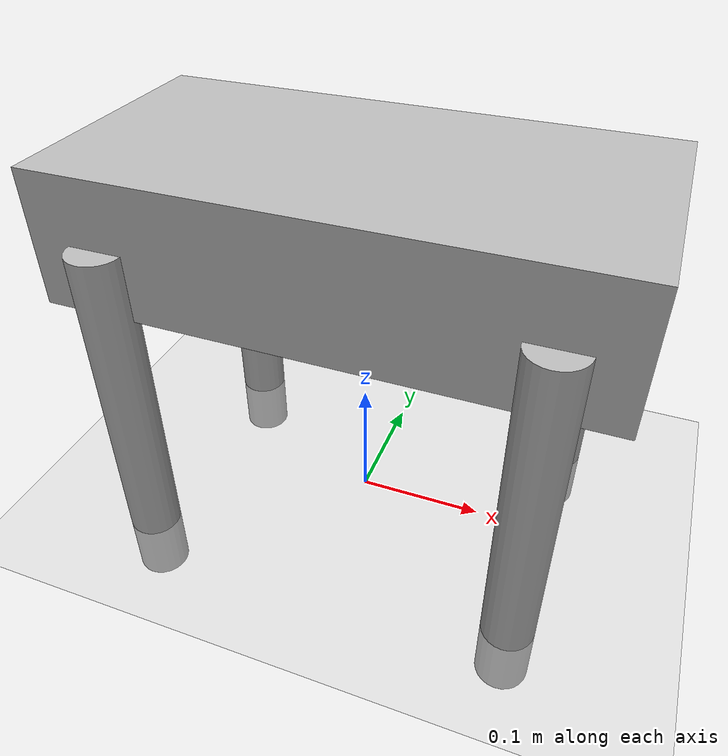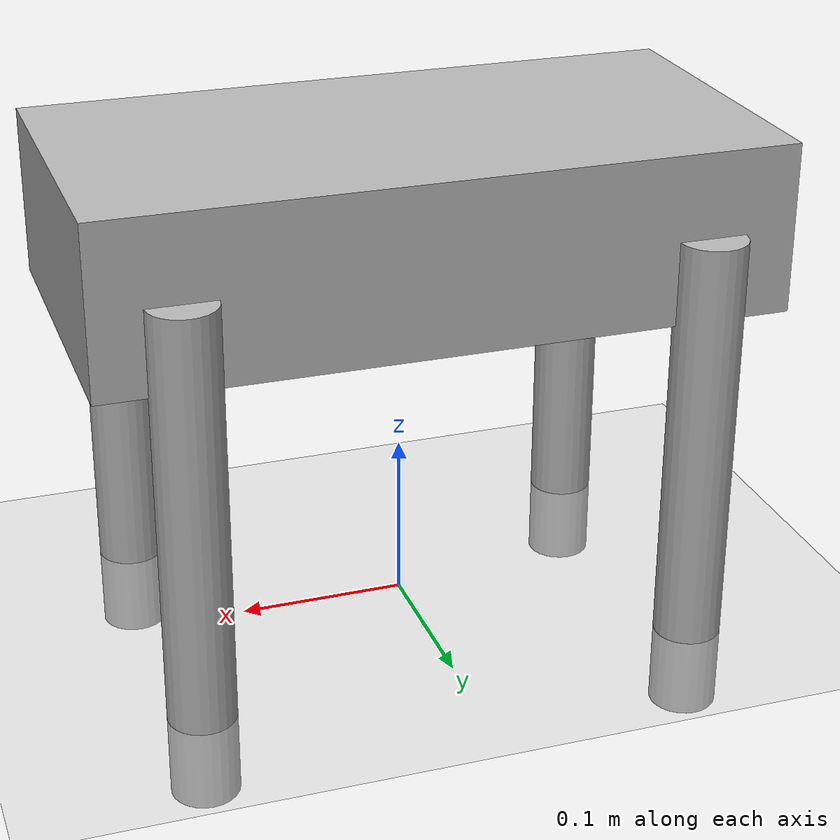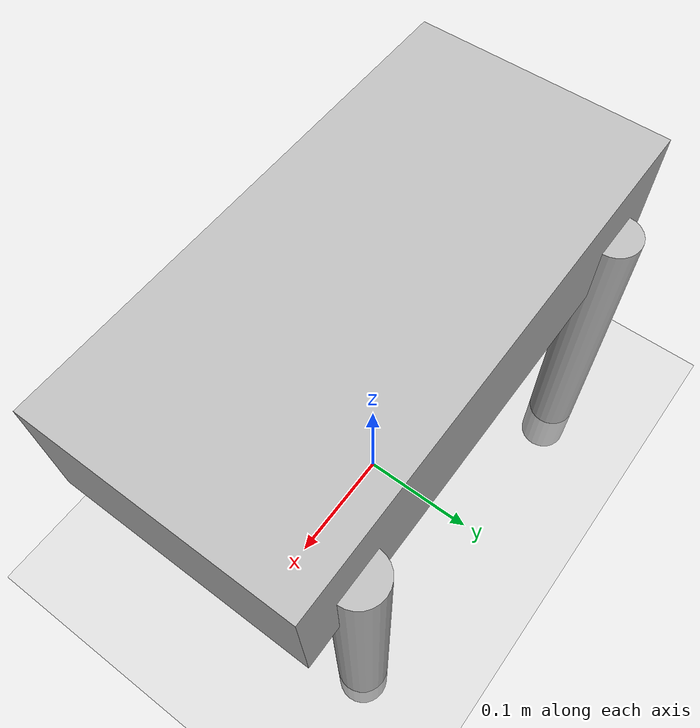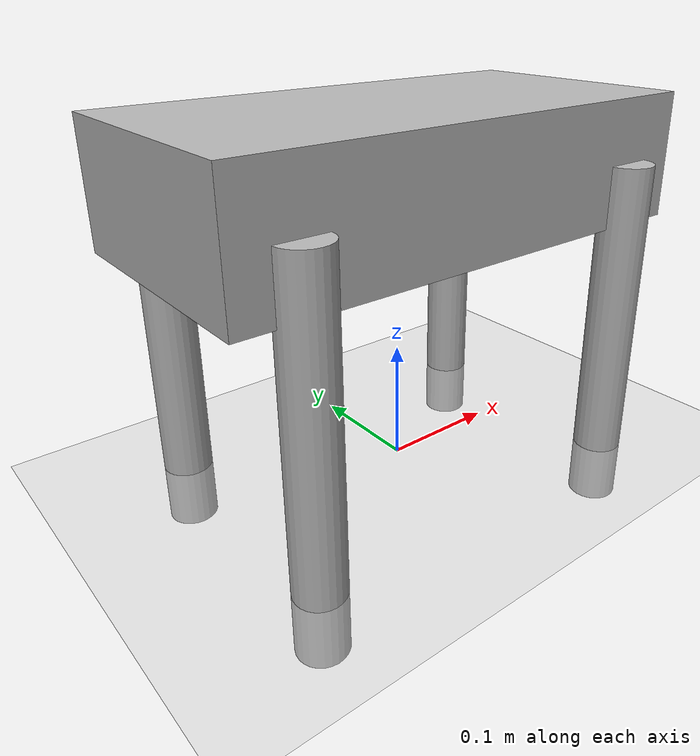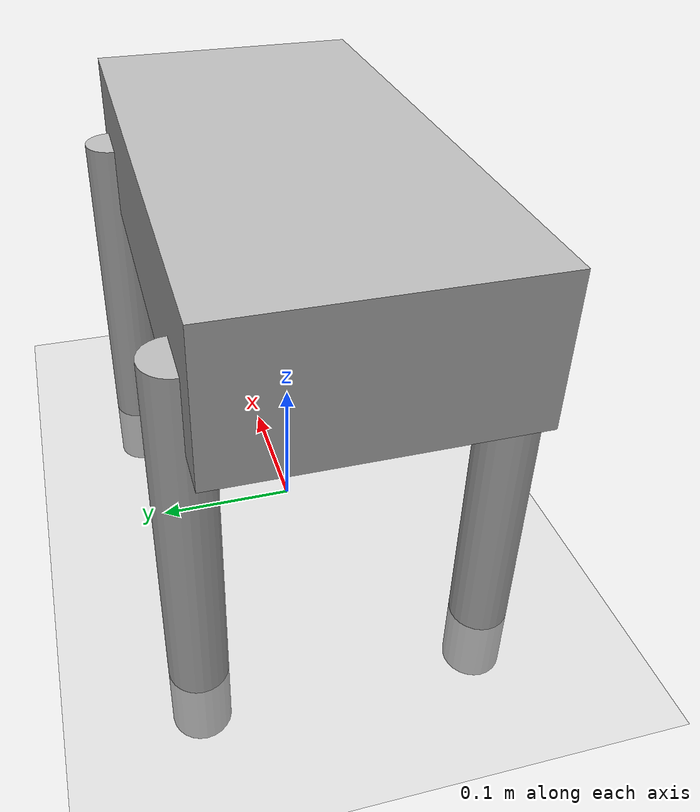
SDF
<?xml version="1.0" ?>
<sdf version="1.9">
  <world name="default">
    <physics type="ode">
      <max_step_size>0.001</max_step_size>
      <real_time_factor>1</real_time_factor>
    </physics>

    <!-- Ground -->
    <model name="ground_plane">
      <static>true</static>
      <link name="link">
        <collision name="collision">
          <geometry>
            <plane>
              <normal>0 0 1</normal>
              <size>10 10</size>
            </plane>
          </geometry>
        </collision>
        <visual name="visual">
          <geometry>
            <plane>
              <normal>0 0 1</normal>
              <size>10 10</size>
            </plane>
          </geometry>
        </visual>
      </link>
    </model>

    <!-- Quadruped -->
    <model name="quadruped">
      <pose>0 0 0.25 0 0 0</pose>

      <!-- Body -->
      <link name="body">
        <inertial>
          <mass>5</mass>
          <inertia>
            <ixx>0.1</ixx><iyy>0.1</iyy><izz>0.1</izz>
          </inertia>
        </inertial>

        <collision name="collision">
          <geometry>
            <box>
              <size>0.4 0.2 0.1</size>
            </box>
          </geometry>
        </collision>

        <visual name="visual">
          <geometry>
            <box>
              <size>0.4 0.2 0.1</size>
            </box>
          </geometry>
        </visual>
      </link>

      <!-- Macro-style legs (FL, FR, RL, RR) -->

      <!-- Front Left -->
      <link name="leg_fl">
        <pose>0.15 0.1 -0.15 0 0 0</pose>
        <collision name="collision">
          <geometry>
            <cylinder>
              <radius>0.02</radius>
              <length>0.3</length>
            </cylinder>
          </geometry>
        </collision>
        <visual name="visual">
          <geometry>
            <cylinder>
              <radius>0.02</radius>
              <length>0.3</length>
            </cylinder>
          </geometry>
        </visual>
      </link>

      <joint name="hip_fl" type="revolute">
        <parent>body</parent>
        <child>leg_fl</child>
        <axis>
          <xyz>0 1 0</xyz>
          <limit>
            <lower>-1.0</lower>
            <upper>1.0</upper>
          </limit>
        </axis>
      </joint>

      <!-- Front Right -->
      <link name="leg_fr">
        <pose>0.15 -0.1 -0.15 0 0 0</pose>
        <collision name="collision">
          <geometry>
            <cylinder>
              <radius>0.02</radius>
              <length>0.3</length>
            </cylinder>
          </geometry>
        </collision>
        <visual name="visual">
          <geometry>
            <cylinder>
              <radius>0.02</radius>
              <length>0.3</length>
            </cylinder>
          </geometry>
        </visual>
      </link>

      <joint name="hip_fr" type="revolute">
        <parent>body</parent>
        <child>leg_fr</child>
        <axis>
          <xyz>0 1 0</xyz>
          <limit>
            <lower>-1.0</lower>
            <upper>1.0</upper>
          </limit>
        </axis>
      </joint>

      <!-- Rear Left -->
      <link name="leg_rl">
        <pose>-0.15 0.1 -0.15 0 0 0</pose>
        <collision name="collision">
          <geometry>
            <cylinder>
              <radius>0.02</radius>
              <length>0.3</length>
            </cylinder>
          </geometry>
        </collision>
        <visual name="visual">
          <geometry>
            <cylinder>
              <radius>0.02</radius>
              <length>0.3</length>
            </cylinder>
          </geometry>
        </visual>
      </link>

      <joint name="hip_rl" type="revolute">
        <parent>body</parent>
        <child>leg_rl</child>
        <axis>
          <xyz>0 1 0</xyz>
          <limit>
            <lower>-1.0</lower>
            <upper>1.0</upper>
          </limit>
        </axis>
      </joint>

      <!-- Rear Right -->
      <link name="leg_rr">
        <pose>-0.15 -0.1 -0.15 0 0 0</pose>
        <collision name="collision">
          <geometry>
            <cylinder>
              <radius>0.02</radius>
              <length>0.3</length>
            </cylinder>
          </geometry>
        </collision>
        <visual name="visual">
          <geometry>
            <cylinder>
              <radius>0.02</radius>
              <length>0.3</length>
            </cylinder>
          </geometry>
        </visual>
      </link>

      <joint name="hip_rr" type="revolute">
        <parent>body</parent>
        <child>leg_rr</child>
        <axis>
          <xyz>0 1 0</xyz>
          <limit>
            <lower>-1.0</lower>
            <upper>1.0</upper>
          </limit>
        </axis>
      </joint>

    </model>
  </world>
</sdf>
